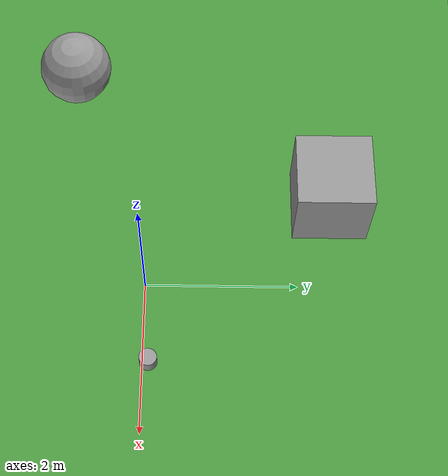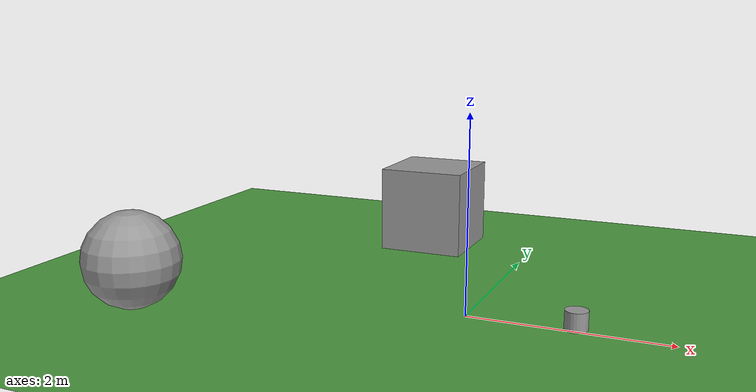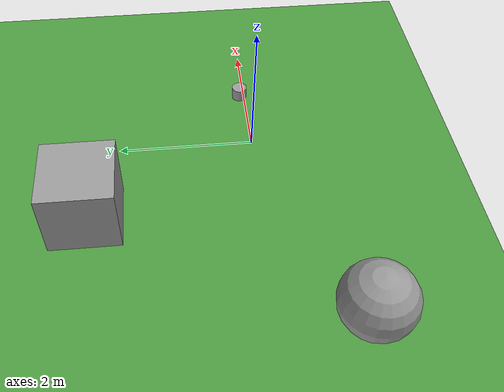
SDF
<sdf version="1.6">
 <world name="default">
  <scene>
   <ambient>0.9 0.9 0.9 1</ambient>
   <fog><color>0 0 0 0</color><type>linear</type><start>0.1</start><end>100.1</end><density>0.5</density></fog>
   <background>0.5 0.8 0.9 1</background>
   <shadows>1</shadows>
  </scene>
  <model name="ground_plane">
   <static>1</static>
   <link name="link">
    <collision name="collision">
     <geometry><plane><normal>0 0 1</normal><size>100 100</size></plane></geometry>
     <surface>
      <contact><collide_bitmask>65535</collide_bitmask></contact>
      <friction><ode><mu>100</mu><mu2>50</mu2></ode></friction>
     </surface>
    </collision>
    <visual name="visual">
     <cast_shadows>0</cast_shadows>
     <geometry><plane><normal>0 0 1</normal><size>100 100</size></plane></geometry>
     <material>
      <script><uri>file://media/materials/scripts/gazebo.material</uri><name>Gazebo/GrassFloor</name></script>
     </material>
    </visual>
   </link>
  </model>
  <light name="sun" type="directional">
   <pose>0 0 10 0 -0 0</pose>
   <diffuse>0.9 0.9 0.9 1</diffuse>
   <specular>0.4 0.4 0.4 1</specular>
   <attenuation>
    <range>1000</range>
    <constant>0.9</constant>
    <linear>0.01</linear>
    <quadratic>0.001</quadratic>
   </attenuation>
   <direction>-0.5 0.1 -0.9</direction>
  </light>
  <gravity>0 0 -9.8</gravity>
  <magnetic_field>6e-06 2.3e-05 -4.2e-05</magnetic_field>
  <atmosphere type="adiabatic"/>
  <physics name="default_physics" default="0" type="ode">
   <max_step_size>0.001</max_step_size>
   <real_time_factor>1</real_time_factor>
   <real_time_update_rate>1000</real_time_update_rate>
  </physics>
  <audio><device>default</device></audio>
  <spherical_coordinates>
   <surface_model>EARTH_WGS84</surface_model>
   <latitude_deg>0</latitude_deg>
   <longitude_deg>0</longitude_deg>
   <elevation>0</elevation>
   <heading_deg>0</heading_deg>
  </spherical_coordinates>
  <model name="unit_cylinder">
   <link name="link">
    <inertial>
     <mass>1</mass>
     <inertia><ixx>0.145833</ixx><ixy>0</ixy><ixz>0</ixz><iyy>0.145833</iyy><iyz>0</iyz><izz>0.125</izz></inertia>
    </inertial>
    <visual name="visual">
     <geometry><cylinder><radius>0.114445</radius><length>0.19341</length></cylinder></geometry>
     <material>
      <script><name>Gazebo/Grey</name><uri>file://media/materials/scripts/gazebo.material</uri></script>
     </material>
    </visual>
    <collision name="collision">
     <geometry><cylinder><radius>0.114445</radius><length>0.19341</length></cylinder></geometry>
     <surface>
      <friction>
       <ode><mu>1</mu><mu2>1</mu2><fdir1>0 0 0</fdir1><slip1>0</slip1><slip2>0</slip2></ode>
       <torsional>
        <coefficient>1</coefficient>
        <patch_radius>0</patch_radius>
        <surface_radius>0</surface_radius>
        <use_patch_radius>1</use_patch_radius>
        <ode><slip>0</slip></ode>
       </torsional>
      </friction>
      <bounce><restitution_coefficient>0</restitution_coefficient><threshold>1e+06</threshold></bounce>
      <contact>
       <collide_without_contact>0</collide_without_contact>
       <collide_without_contact_bitmask>1</collide_without_contact_bitmask>
       <collide_bitmask>1</collide_bitmask>
       <ode>
        <soft_cfm>0</soft_cfm>
        <soft_erp>0.2</soft_erp>
        <kp>1e+13</kp>
        <kd>1</kd>
        <max_vel>0.01</max_vel>
        <min_depth>0</min_depth>
       </ode>
       <bullet>
        <split_impulse>1</split_impulse>
        <split_impulse_penetration_threshold>-0.01</split_impulse_penetration_threshold>
        <soft_cfm>0</soft_cfm>
        <soft_erp>0.2</soft_erp>
        <kp>1e+13</kp>
        <kd>1</kd>
       </bullet>
      </contact>
     </surface>
    </collision>
   </link>
   <static>0</static>
   <pose>1.06554 0.075494 0.096705 0 -0 0</pose>
  </model>
  <model name="unit_box">
   <pose>-1.23296 2.45049 0.5 0 -0 0</pose>
   <link name="link">
    <inertial>
     <mass>1</mass>
     <inertia>
      <ixx>0.166667</ixx>
      <ixy>0</ixy>
      <ixz>0</ixz>
      <iyy>0.166667</iyy>
      <iyz>0</iyz>
      <izz>0.166667</izz>
     </inertia>
    </inertial>
    <collision name="collision"><geometry><box><size>1 1 1</size></box></geometry></collision>
    <visual name="visual">
     <geometry><box><size>1 1 1</size></box></geometry>
     <material>
      <script><name>Gazebo/Grey</name><uri>file://media/materials/scripts/gazebo.material</uri></script>
     </material>
    </visual>
   </link>
  </model>
  <model name="unit_sphere">
   <pose>-3.14606 -1.08498 0.5 0 -0 0</pose>
   <link name="link">
    <inertial>
     <mass>1</mass>
     <inertia><ixx>0.1</ixx><ixy>0</ixy><ixz>0</ixz><iyy>0.1</iyy><iyz>0</iyz><izz>0.1</izz></inertia>
    </inertial>
    <collision name="collision"><geometry><sphere><radius>0.5</radius></sphere></geometry></collision>
    <visual name="visual">
     <geometry><sphere><radius>0.5</radius></sphere></geometry>
     <material>
      <script><name>Gazebo/Grey</name><uri>file://media/materials/scripts/gazebo.material</uri></script>
     </material>
    </visual>
   </link>
  </model>
  <light name="user_spot_light_0" type="spot">
   <pose>-1.04825 0.125919 1 0 -0 0</pose>
   <diffuse>0.5 0.5 0.5 1</diffuse>
   <specular>0.1 0.1 0.1 1</specular>
   <direction>0 0 -1</direction>
   <attenuation>
    <range>20</range>
    <constant>0.5</constant>
    <linear>0.01</linear>
    <quadratic>0.001</quadratic>
   </attenuation>
   <cast_shadows>0</cast_shadows>
   <spot><inner_angle>0.6</inner_angle><outer_angle>1</outer_angle><falloff>1</falloff></spot>
  </light>
 </world>
</sdf>
